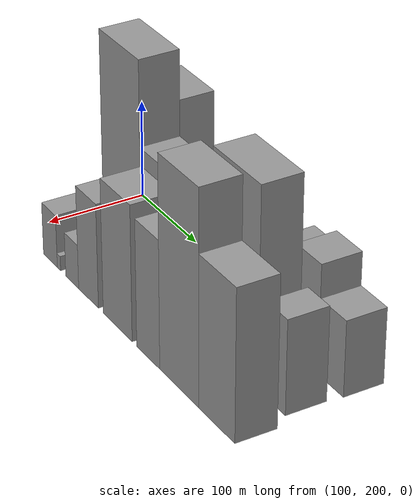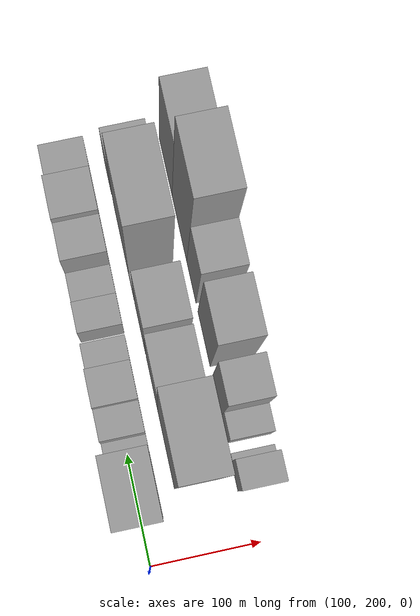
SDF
<sdf version="1.6">
 <world name="default">
  <model name="building_25">
   <static>1</static>
   <pose>100.0000 268.4936 0 0.000000 0.000000 0.000000</pose>
   <link name="link">
    <pose>0 0 75.00 0 0 0</pose>
    <collision name="collision"><geometry><box><size>40.0000 58.6317 150.0000</size></box></geometry></collision>
    <visual name="visual">
     <cast_shadows>0</cast_shadows>
     <geometry><box><size>40.0000 58.6317 150.0000</size></box></geometry>
     <material>
      <script>
       <uri>model://grey_wall/materials/scripts</uri>
       <uri>model://grey_wall/materials/textures</uri>
       <name>vrc/grey_wall</name>
      </script>
     </material>
    </visual>
   </link>
  </model>
  <model name="building_26">
   <static>1</static>
   <pose>100.0000 307.4521 0 0.000000 0.000000 0.000000</pose>
   <link name="link">
    <pose>0 0 13.50 0 0 0</pose>
    <collision name="collision"><geometry><box><size>40.0000 11.2853 27.0000</size></box></geometry></collision>
    <visual name="visual">
     <cast_shadows>0</cast_shadows>
     <geometry><box><size>40.0000 11.2853 27.0000</size></box></geometry>
     <material>
      <script>
       <uri>model://grey_wall/materials/scripts</uri>
       <uri>model://grey_wall/materials/textures</uri>
       <name>vrc/grey_wall</name>
      </script>
     </material>
    </visual>
   </link>
  </model>
  <model name="building_27">
   <static>1</static>
   <pose>100.0000 327.2081 0 0.000000 0.000000 0.000000</pose>
   <link name="link">
    <pose>0 0 27.00 0 0 0</pose>
    <collision name="collision"><geometry><box><size>40.0000 28.2266 54.0000</size></box></geometry></collision>
    <visual name="visual">
     <cast_shadows>0</cast_shadows>
     <geometry><box><size>40.0000 28.2266 54.0000</size></box></geometry>
     <material>
      <script>
       <uri>model://grey_wall/materials/scripts</uri>
       <uri>model://grey_wall/materials/textures</uri>
       <name>vrc/grey_wall</name>
      </script>
     </material>
    </visual>
   </link>
  </model>
  <model name="building_28">
   <static>1</static>
   <pose>100.0000 358.2959 0 0.000000 0.000000 0.000000</pose>
   <link name="link">
    <pose>0 0 33.00 0 0 0</pose>
    <collision name="collision"><geometry><box><size>40.0000 33.9491 66.0000</size></box></geometry></collision>
    <visual name="visual">
     <cast_shadows>0</cast_shadows>
     <geometry><box><size>40.0000 33.9491 66.0000</size></box></geometry>
     <material>
      <script>
       <uri>model://grey_wall/materials/scripts</uri>
       <uri>model://grey_wall/materials/textures</uri>
       <name>vrc/grey_wall</name>
      </script>
     </material>
    </visual>
   </link>
  </model>
  <model name="building_29">
   <static>1</static>
   <pose>100.0000 387.8165 0 0.000000 0.000000 0.000000</pose>
   <link name="link">
    <pose>0 0 22.50 0 0 0</pose>
    <collision name="collision"><geometry><box><size>40.0000 25.0919 45.0000</size></box></geometry></collision>
    <visual name="visual">
     <cast_shadows>0</cast_shadows>
     <geometry><box><size>40.0000 25.0919 45.0000</size></box></geometry>
     <material>
      <script>
       <uri>model://grey_wall/materials/scripts</uri>
       <uri>model://grey_wall/materials/textures</uri>
       <name>vrc/grey_wall</name>
      </script>
     </material>
    </visual>
   </link>
  </model>
  <model name="building_30">
   <static>1</static>
   <pose>100.0000 422.3995 0 0.000000 0.000000 0.000000</pose>
   <link name="link">
    <pose>0 0 27.00 0 0 0</pose>
    <collision name="collision"><geometry><box><size>40.0000 28.0742 54.0000</size></box></geometry></collision>
    <visual name="visual">
     <cast_shadows>0</cast_shadows>
     <geometry><box><size>40.0000 28.0742 54.0000</size></box></geometry>
     <material>
      <script>
       <uri>model://grey_wall/materials/scripts</uri>
       <uri>model://grey_wall/materials/textures</uri>
       <name>vrc/grey_wall</name>
      </script>
     </material>
    </visual>
   </link>
  </model>
  <model name="building_31">
   <static>1</static>
   <pose>100.0000 450.1363 0 0.000000 0.000000 0.000000</pose>
   <link name="link">
    <pose>0 0 24.00 0 0 0</pose>
    <collision name="collision"><geometry><box><size>40.0000 27.3993 48.0000</size></box></geometry></collision>
    <visual name="visual">
     <cast_shadows>0</cast_shadows>
     <geometry><box><size>40.0000 27.3993 48.0000</size></box></geometry>
     <material>
      <script>
       <uri>model://grey_wall/materials/scripts</uri>
       <uri>model://grey_wall/materials/textures</uri>
       <name>vrc/grey_wall</name>
      </script>
     </material>
    </visual>
   </link>
  </model>
  <model name="building_32">
   <static>1</static>
   <pose>100.0000 480.4484 0 0.000000 0.000000 0.000000</pose>
   <link name="link">
    <pose>0 0 48.00 0 0 0</pose>
    <collision name="collision"><geometry><box><size>40.0000 33.2249 96.0000</size></box></geometry></collision>
    <visual name="visual">
     <cast_shadows>0</cast_shadows>
     <geometry><box><size>40.0000 33.2249 96.0000</size></box></geometry>
     <material>
      <script>
       <uri>model://grey_wall/materials/scripts</uri>
       <uri>model://grey_wall/materials/textures</uri>
       <name>vrc/grey_wall</name>
      </script>
     </material>
    </visual>
   </link>
  </model>
  <model name="building_33">
   <static>1</static>
   <pose>100.0000 516.2887 0 0.000000 0.000000 0.000000</pose>
   <link name="link">
    <pose>0 0 54.00 0 0 0</pose>
    <collision name="collision"><geometry><box><size>40.0000 38.4556 108.0000</size></box></geometry></collision>
    <visual name="visual">
     <cast_shadows>0</cast_shadows>
     <geometry><box><size>40.0000 38.4556 108.0000</size></box></geometry>
     <material>
      <script>
       <uri>model://grey_wall/materials/scripts</uri>
       <uri>model://grey_wall/materials/textures</uri>
       <name>vrc/grey_wall</name>
      </script>
     </material>
    </visual>
   </link>
  </model>
  <model name="building_34">
   <static>1</static>
   <pose>100.0000 554.6955 0 0.000000 0.000000 0.000000</pose>
   <link name="link">
    <pose>0 0 37.50 0 0 0</pose>
    <collision name="collision"><geometry><box><size>40.0000 38.3582 75.0000</size></box></geometry></collision>
    <visual name="visual">
     <cast_shadows>0</cast_shadows>
     <geometry><box><size>40.0000 38.3582 75.0000</size></box></geometry>
     <material>
      <script>
       <uri>model://grey_wall/materials/scripts</uri>
       <uri>model://grey_wall/materials/textures</uri>
       <name>vrc/grey_wall</name>
      </script>
     </material>
    </visual>
   </link>
  </model>
  <model name="building_60">
   <static>1</static>
   <pose>155.0000 296.6853 0 0.000000 0.000000 0.000000</pose>
   <link name="link">
    <pose>0 0 109.50 0 0 0</pose>
    <collision name="collision"><geometry><box><size>40.0000 70.3727 219.0000</size></box></geometry></collision>
    <visual name="visual">
     <cast_shadows>0</cast_shadows>
     <geometry><box><size>40.0000 70.3727 219.0000</size></box></geometry>
     <material>
      <script>
       <uri>model://grey_wall/materials/scripts</uri>
       <uri>model://grey_wall/materials/textures</uri>
       <name>vrc/grey_wall</name>
      </script>
     </material>
    </visual>
   </link>
  </model>
  <model name="building_61">
   <static>1</static>
   <pose>155.0000 357.4963 0 0.000000 0.000000 0.000000</pose>
   <link name="link">
    <pose>0 0 67.50 0 0 0</pose>
    <collision name="collision"><geometry><box><size>40.0000 51.2494 135.0000</size></box></geometry></collision>
    <visual name="visual">
     <cast_shadows>0</cast_shadows>
     <geometry><box><size>40.0000 51.2494 135.0000</size></box></geometry>
     <material>
      <script>
       <uri>model://grey_wall/materials/scripts</uri>
       <uri>model://grey_wall/materials/textures</uri>
       <name>vrc/grey_wall</name>
      </script>
     </material>
    </visual>
   </link>
  </model>
  <model name="building_62">
   <static>1</static>
   <pose>155.0000 409.5123 0 0.000000 0.000000 0.000000</pose>
   <link name="link">
    <pose>0 0 72.00 0 0 0</pose>
    <collision name="collision"><geometry><box><size>40.0000 46.7825 144.0000</size></box></geometry></collision>
    <visual name="visual">
     <cast_shadows>0</cast_shadows>
     <geometry><box><size>40.0000 46.7825 144.0000</size></box></geometry>
     <material>
      <script>
       <uri>model://grey_wall/materials/scripts</uri>
       <uri>model://grey_wall/materials/textures</uri>
       <name>vrc/grey_wall</name>
      </script>
     </material>
    </visual>
   </link>
  </model>
  <model name="building_63">
   <static>1</static>
   <pose>155.0000 445.6887 0 0.000000 0.000000 0.000000</pose>
   <link name="link">
    <pose>0 0 16.50 0 0 0</pose>
    <collision name="collision"><geometry><box><size>40.0000 19.5704 33.0000</size></box></geometry></collision>
    <visual name="visual">
     <cast_shadows>0</cast_shadows>
     <geometry><box><size>40.0000 19.5704 33.0000</size></box></geometry>
     <material>
      <script>
       <uri>model://grey_wall/materials/scripts</uri>
       <uri>model://grey_wall/materials/textures</uri>
       <name>vrc/grey_wall</name>
      </script>
     </material>
    </visual>
   </link>
  </model>
  <model name="building_64">
   <static>1</static>
   <pose>155.0000 492.4043 0 0.000000 0.000000 0.000000</pose>
   <link name="link">
    <pose>0 0 97.50 0 0 0</pose>
    <collision name="collision"><geometry><box><size>40.0000 73.8607 195.0000</size></box></geometry></collision>
    <visual name="visual">
     <cast_shadows>0</cast_shadows>
     <geometry><box><size>40.0000 73.8607 195.0000</size></box></geometry>
     <material>
      <script>
       <uri>model://grey_wall/materials/scripts</uri>
       <uri>model://grey_wall/materials/textures</uri>
       <name>vrc/grey_wall</name>
      </script>
     </material>
    </visual>
   </link>
  </model>
  <model name="building_65">
   <static>1</static>
   <pose>155.0000 555.4554 0 0.000000 0.000000 0.000000</pose>
   <link name="link">
    <pose>0 0 46.50 0 0 0</pose>
    <collision name="collision"><geometry><box><size>40.0000 32.2416 93.0000</size></box></geometry></collision>
    <visual name="visual">
     <cast_shadows>0</cast_shadows>
     <geometry><box><size>40.0000 32.2416 93.0000</size></box></geometry>
     <material>
      <script>
       <uri>model://grey_wall/materials/scripts</uri>
       <uri>model://grey_wall/materials/textures</uri>
       <name>vrc/grey_wall</name>
      </script>
     </material>
    </visual>
   </link>
  </model>
  <model name="building_87">
   <static>1</static>
   <pose>210.0000 261.1110 0 0.000000 0.000000 0.000000</pose>
   <link name="link">
    <pose>0 0 27.00 0 0 0</pose>
    <collision name="collision"><geometry><box><size>40.0000 27.2512 54.0000</size></box></geometry></collision>
    <visual name="visual">
     <cast_shadows>0</cast_shadows>
     <geometry><box><size>40.0000 27.2512 54.0000</size></box></geometry>
     <material>
      <script>
       <uri>model://grey_wall/materials/scripts</uri>
       <uri>model://grey_wall/materials/textures</uri>
       <name>vrc/grey_wall</name>
      </script>
     </material>
    </visual>
   </link>
  </model>
  <model name="building_88">
   <static>1</static>
   <pose>210.0000 277.9756 0 0.000000 0.000000 0.000000</pose>
   <link name="link">
    <pose>0 0 7.50 0 0 0</pose>
    <collision name="collision"><geometry><box><size>40.0000 6.4781 15.0000</size></box></geometry></collision>
    <visual name="visual">
     <cast_shadows>0</cast_shadows>
     <geometry><box><size>40.0000 6.4781 15.0000</size></box></geometry>
     <material>
      <script>
       <uri>model://grey_wall/materials/scripts</uri>
       <uri>model://grey_wall/materials/textures</uri>
       <name>vrc/grey_wall</name>
      </script>
     </material>
    </visual>
   </link>
  </model>
  <model name="building_89">
   <static>1</static>
   <pose>210.0000 303.6351 0 0.000000 0.000000 0.000000</pose>
   <link name="link">
    <pose>0 0 22.50 0 0 0</pose>
    <collision name="collision"><geometry><box><size>40.0000 24.8410 45.0000</size></box></geometry></collision>
    <visual name="visual">
     <cast_shadows>0</cast_shadows>
     <geometry><box><size>40.0000 24.8410 45.0000</size></box></geometry>
     <material>
      <script>
       <uri>model://grey_wall/materials/scripts</uri>
       <uri>model://grey_wall/materials/textures</uri>
       <name>vrc/grey_wall</name>
      </script>
     </material>
    </visual>
   </link>
  </model>
  <model name="building_90">
   <static>1</static>
   <pose>210.0000 334.5806 0 0.000000 0.000000 0.000000</pose>
   <link name="link">
    <pose>0 0 52.50 0 0 0</pose>
    <collision name="collision"><geometry><box><size>40.0000 37.0499 105.0000</size></box></geometry></collision>
    <visual name="visual">
     <cast_shadows>0</cast_shadows>
     <geometry><box><size>40.0000 37.0499 105.0000</size></box></geometry>
     <material>
      <script>
       <uri>model://grey_wall/materials/scripts</uri>
       <uri>model://grey_wall/materials/textures</uri>
       <name>vrc/grey_wall</name>
      </script>
     </material>
    </visual>
   </link>
  </model>
  <model name="building_91">
   <static>1</static>
   <pose>210.0000 388.1367 0 0.000000 0.000000 0.000000</pose>
   <link name="link">
    <pose>0 0 67.50 0 0 0</pose>
    <collision name="collision"><geometry><box><size>40.0000 52.0624 135.0000</size></box></geometry></collision>
    <visual name="visual">
     <cast_shadows>0</cast_shadows>
     <geometry><box><size>40.0000 52.0624 135.0000</size></box></geometry>
     <material>
      <script>
       <uri>model://grey_wall/materials/scripts</uri>
       <uri>model://grey_wall/materials/textures</uri>
       <name>vrc/grey_wall</name>
      </script>
     </material>
    </visual>
   </link>
  </model>
  <model name="building_92">
   <static>1</static>
   <pose>210.0000 442.0187 0 0.000000 0.000000 0.000000</pose>
   <link name="link">
    <pose>0 0 63.00 0 0 0</pose>
    <collision name="collision"><geometry><box><size>40.0000 39.7016 126.0000</size></box></geometry></collision>
    <visual name="visual">
     <cast_shadows>0</cast_shadows>
     <geometry><box><size>40.0000 39.7016 126.0000</size></box></geometry>
     <material>
      <script>
       <uri>model://grey_wall/materials/scripts</uri>
       <uri>model://grey_wall/materials/textures</uri>
       <name>vrc/grey_wall</name>
      </script>
     </material>
    </visual>
   </link>
  </model>
  <model name="building_93">
   <static>1</static>
   <pose>210.0000 493.9959 0 0.000000 0.000000 0.000000</pose>
   <link name="link">
    <pose>0 0 103.50 0 0 0</pose>
    <collision name="collision"><geometry><box><size>40.0000 64.2528 207.0000</size></box></geometry></collision>
    <visual name="visual">
     <cast_shadows>0</cast_shadows>
     <geometry><box><size>40.0000 64.2528 207.0000</size></box></geometry>
     <material>
      <script>
       <uri>model://grey_wall/materials/scripts</uri>
       <uri>model://grey_wall/materials/textures</uri>
       <name>vrc/grey_wall</name>
      </script>
     </material>
    </visual>
   </link>
  </model>
  <model name="building_94">
   <static>1</static>
   <pose>210.0000 554.7462 0 0.000000 0.000000 0.000000</pose>
   <link name="link">
    <pose>0 0 73.50 0 0 0</pose>
    <collision name="collision"><geometry><box><size>40.0000 57.2478 147.0000</size></box></geometry></collision>
    <visual name="visual">
     <cast_shadows>0</cast_shadows>
     <geometry><box><size>40.0000 57.2478 147.0000</size></box></geometry>
     <material>
      <script>
       <uri>model://grey_wall/materials/scripts</uri>
       <uri>model://grey_wall/materials/textures</uri>
       <name>vrc/grey_wall</name>
      </script>
     </material>
    </visual>
   </link>
  </model>
 </world>
</sdf>
